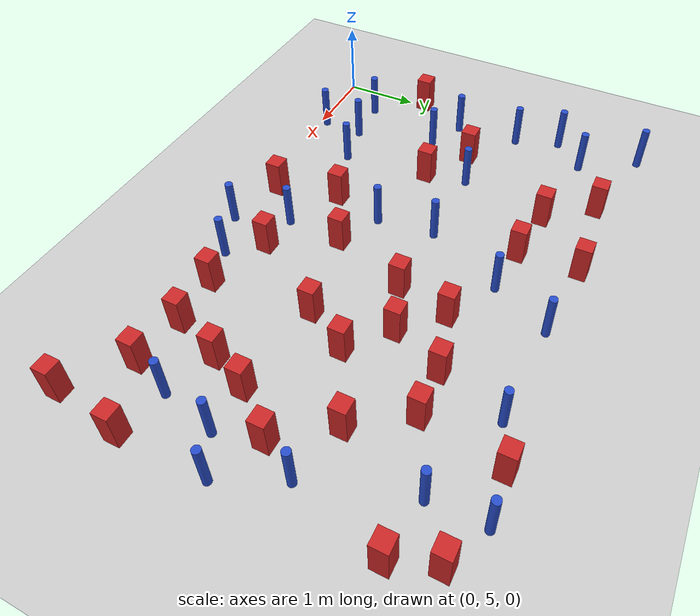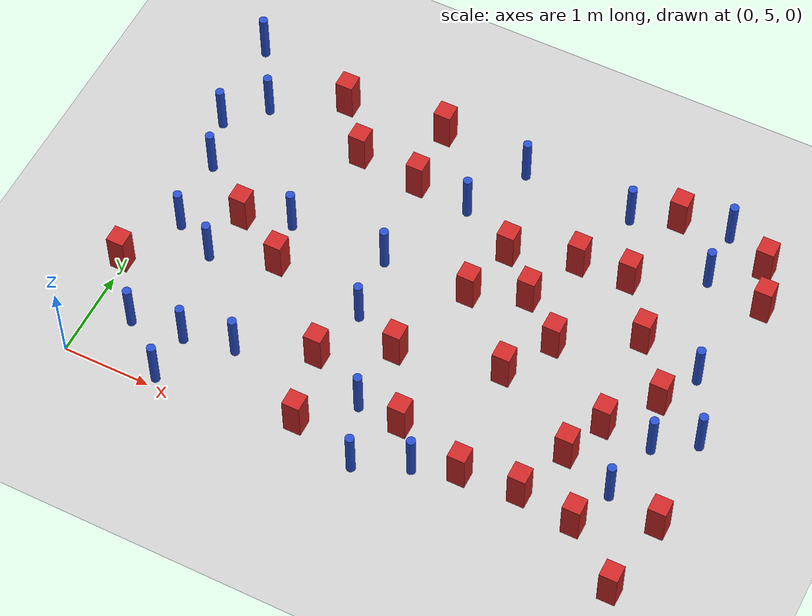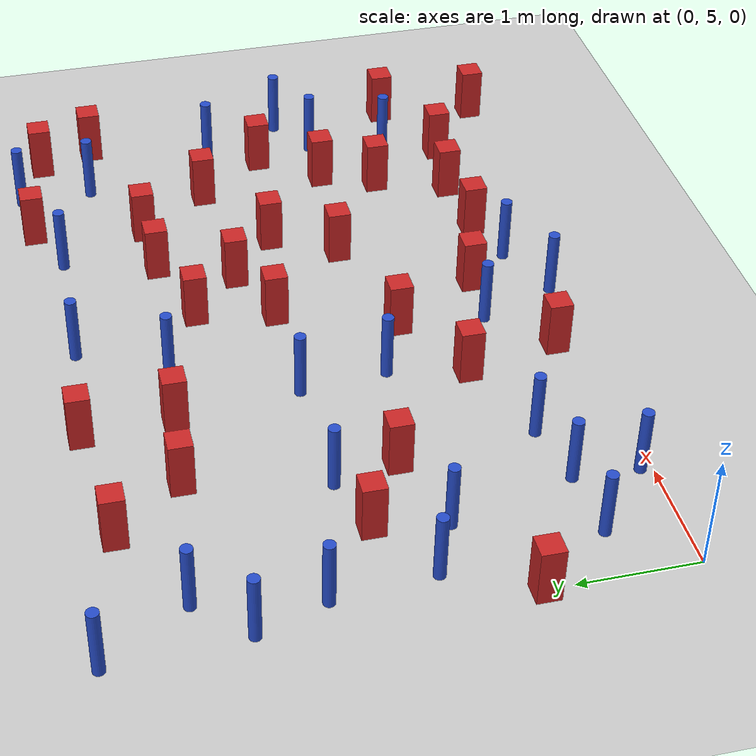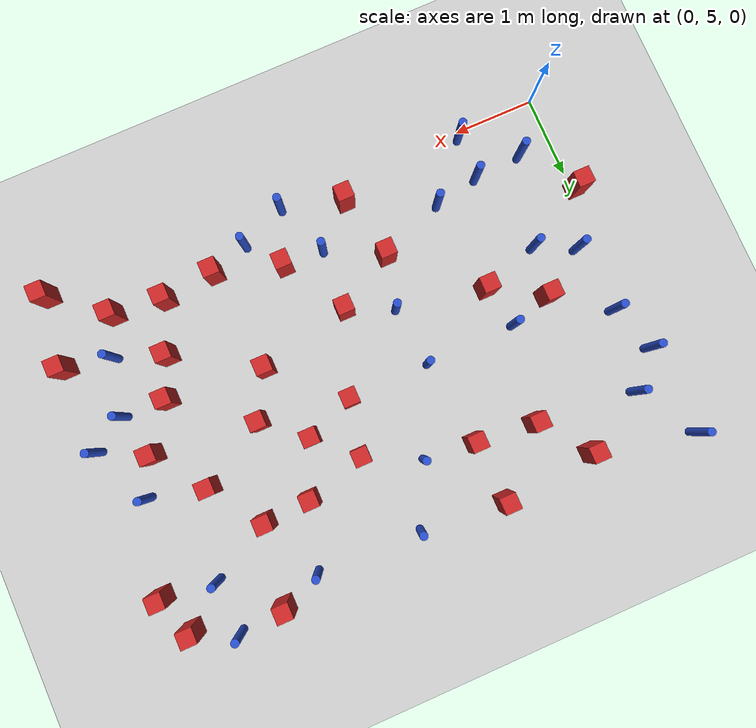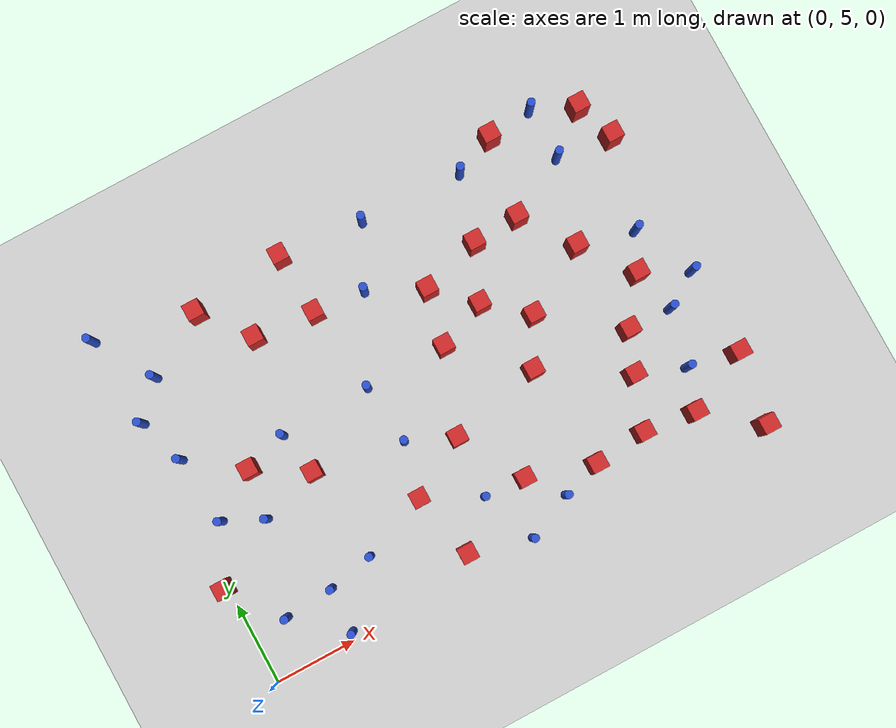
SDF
<sdf version="1.6">
 <world name="default">
  <model name="ground_plane">
   <static>1</static>
   <link name="link">
    <collision name="collision">
     <geometry><plane><normal>0 0 1</normal><size>100 100</size></plane></geometry>
     <surface><friction><ode><mu>100</mu><mu2>50</mu2></ode></friction></surface>
    </collision>
    <visual name="visual">
     <cast_shadows>0</cast_shadows>
     <geometry><plane><normal>0 0 1</normal><size>100 100</size></plane></geometry>
     <material>
      <ambient>1.0 1.0 1.0 1.0</ambient>
      <diffuse>0.8 0.8 0.8 1.0</diffuse>
      <specular>0.01 0.01 0.01 1.000000</specular>
     </material>
    </visual>
   </link>
  </model>
  <model name="square_post_obstacle15">
   <static>true</static>
   <pose>4.13115167397 7.73196984689 1.91545236811e-07 -7.35059704564e-06 1.12565212e-07 2.39332434364e-05</pose>
   <link name="link">
    <pose>0 0 0.25 0 -0 0</pose>
    <inertial>
     <mass>100</mass>
     <inertia>
      <ixx>0.166667</ixx>
      <ixy>0</ixy>
      <ixz>0</ixz>
      <iyy>0.166667</iyy>
      <iyz>0</iyz>
      <izz>0.166667</izz>
     </inertia>
    </inertial>
    <collision name="collision"><geometry><box><size>.2 .2 .5</size></box></geometry></collision>
    <visual name="visual">
     <geometry><box><size>.2 .2 .5</size></box></geometry>
     <material>
      <script><name>Gazebo/Red</name><uri>file://media/materials/scripts/gazebo.material</uri></script>
     </material>
    </visual>
   </link>
  </model>
  <model name="square_post_obstacle16">
   <static>true</static>
   <pose>3.53115451772 7.49610520008 1.91545236811e-07 -7.35059704564e-06 1.12565212e-07 2.39332434364e-05</pose>
   <link name="link">
    <pose>0 0 0.25 0 -0 0</pose>
    <inertial>
     <mass>100</mass>
     <inertia>
      <ixx>0.166667</ixx>
      <ixy>0</ixy>
      <ixz>0</ixz>
      <iyy>0.166667</iyy>
      <iyz>0</iyz>
      <izz>0.166667</izz>
     </inertia>
    </inertial>
    <collision name="collision"><geometry><box><size>.2 .2 .5</size></box></geometry></collision>
    <visual name="visual">
     <geometry><box><size>.2 .2 .5</size></box></geometry>
     <material>
      <script><name>Gazebo/Red</name><uri>file://media/materials/scripts/gazebo.material</uri></script>
     </material>
    </visual>
   </link>
  </model>
  <model name="pole_obstacle14">
   <static>true</static>
   <pose>6.1434675484 7.62217938228 7.38925637345e-09 -8.47170692796e-08 1.24976764786e-08 -1.74513093032e-07</pose>
   <link name="link">
    <pose>0 0 0.3 0 -0 0</pose>
    <inertial>
     <mass>1</mass>
     <inertia><ixx>0.145833</ixx><ixy>0</ixy><ixz>0</ixz><iyy>0.145833</iyy><iyz>0</iyz><izz>0.125</izz></inertia>
    </inertial>
    <collision name="collision">
     <geometry><cylinder><radius>0.05</radius><length>.6</length></cylinder></geometry>
    </collision>
    <visual name="visual">
     <geometry><cylinder><radius>0.05</radius><length>.6</length></cylinder></geometry>
     <material>
      <script><name>Gazebo/Blue</name><uri>file://media/materials/scripts/gazebo.material</uri></script>
     </material>
    </visual>
   </link>
  </model>
  <model name="square_post_obstacle24">
   <static>true</static>
   <pose>4.30257774351 6.76059418714 1.91545236811e-07 -7.35059704564e-06 1.12565212e-07 2.39332434364e-05</pose>
   <link name="link">
    <pose>0 0 0.25 0 -0 0</pose>
    <inertial>
     <mass>100</mass>
     <inertia>
      <ixx>0.166667</ixx>
      <ixy>0</ixy>
      <ixz>0</ixz>
      <iyy>0.166667</iyy>
      <iyz>0</iyz>
      <izz>0.166667</izz>
     </inertia>
    </inertial>
    <collision name="collision"><geometry><box><size>.2 .2 .5</size></box></geometry></collision>
    <visual name="visual">
     <geometry><box><size>.2 .2 .5</size></box></geometry>
     <material>
      <script><name>Gazebo/Red</name><uri>file://media/materials/scripts/gazebo.material</uri></script>
     </material>
    </visual>
   </link>
  </model>
  <model name="pole_obstacle18">
   <static>true</static>
   <pose>3.37846902012 5.0575308071 7.38925637345e-09 -8.47170692798e-08 1.24976765033e-08 -1.74513093019e-07</pose>
   <link name="link">
    <pose>0 0 0.3 0 -0 0</pose>
    <inertial>
     <mass>1</mass>
     <inertia><ixx>0.145833</ixx><ixy>0</ixy><ixz>0</ixz><iyy>0.145833</iyy><iyz>0</iyz><izz>0.125</izz></inertia>
    </inertial>
    <collision name="collision">
     <geometry><cylinder><radius>0.05</radius><length>.6</length></cylinder></geometry>
    </collision>
    <visual name="visual">
     <geometry><cylinder><radius>0.05</radius><length>.6</length></cylinder></geometry>
     <material>
      <script><name>Gazebo/Blue</name><uri>file://media/materials/scripts/gazebo.material</uri></script>
     </material>
    </visual>
   </link>
  </model>
  <model name="pole_obstacle25">
   <static>true</static>
   <pose>4.66660512128 9.19185439013 7.38925637345e-09 -8.471706928e-08 1.24976765081e-08 -1.74513093015e-07</pose>
   <link name="link">
    <pose>0 0 0.3 0 -0 0</pose>
    <inertial>
     <mass>1</mass>
     <inertia><ixx>0.145833</ixx><ixy>0</ixy><ixz>0</ixz><iyy>0.145833</iyy><iyz>0</iyz><izz>0.125</izz></inertia>
    </inertial>
    <collision name="collision">
     <geometry><cylinder><radius>0.05</radius><length>.6</length></cylinder></geometry>
    </collision>
    <visual name="visual">
     <geometry><cylinder><radius>0.05</radius><length>.6</length></cylinder></geometry>
     <material>
      <script><name>Gazebo/Blue</name><uri>file://media/materials/scripts/gazebo.material</uri></script>
     </material>
    </visual>
   </link>
  </model>
  <model name="square_post_obstacle34">
   <static>true</static>
   <pose>5.50390856843 6.64556101438 1.91545236811e-07 -7.35059704564e-06 1.12565212e-07 2.39332434364e-05</pose>
   <link name="link">
    <pose>0 0 0.25 0 -0 0</pose>
    <inertial>
     <mass>100</mass>
     <inertia>
      <ixx>0.166667</ixx>
      <ixy>0</ixy>
      <ixz>0</ixz>
      <iyy>0.166667</iyy>
      <iyz>0</iyz>
      <izz>0.166667</izz>
     </inertia>
    </inertial>
    <collision name="collision"><geometry><box><size>.2 .2 .5</size></box></geometry></collision>
    <visual name="visual">
     <geometry><box><size>.2 .2 .5</size></box></geometry>
     <material>
      <script><name>Gazebo/Red</name><uri>file://media/materials/scripts/gazebo.material</uri></script>
     </material>
    </visual>
   </link>
  </model>
  <model name="pole_obstacle44">
   <static>true</static>
   <pose>2.52265327215 7.49307759897 7.38925637345e-09 -8.47170692798e-08 1.24976765033e-08 -1.74513093019e-07</pose>
   <link name="link">
    <pose>0 0 0.3 0 -0 0</pose>
    <inertial>
     <mass>1</mass>
     <inertia><ixx>0.145833</ixx><ixy>0</ixy><ixz>0</ixz><iyy>0.145833</iyy><iyz>0</iyz><izz>0.125</izz></inertia>
    </inertial>
    <collision name="collision">
     <geometry><cylinder><radius>0.05</radius><length>.6</length></cylinder></geometry>
    </collision>
    <visual name="visual">
     <geometry><cylinder><radius>0.05</radius><length>.6</length></cylinder></geometry>
     <material>
      <script><name>Gazebo/Blue</name><uri>file://media/materials/scripts/gazebo.material</uri></script>
     </material>
    </visual>
   </link>
  </model>
  <model name="square_post_obstacle43">
   <static>true</static>
   <pose>3.16391328015 6.49576306869 1.91545236811e-07 -7.35059704564e-06 1.12565212e-07 2.39332434364e-05</pose>
   <link name="link">
    <pose>0 0 0.25 0 -0 0</pose>
    <inertial>
     <mass>100</mass>
     <inertia>
      <ixx>0.166667</ixx>
      <ixy>0</ixy>
      <ixz>0</ixz>
      <iyy>0.166667</iyy>
      <iyz>0</iyz>
      <izz>0.166667</izz>
     </inertia>
    </inertial>
    <collision name="collision"><geometry><box><size>.2 .2 .5</size></box></geometry></collision>
    <visual name="visual">
     <geometry><box><size>.2 .2 .5</size></box></geometry>
     <material>
      <script><name>Gazebo/Red</name><uri>file://media/materials/scripts/gazebo.material</uri></script>
     </material>
    </visual>
   </link>
  </model>
  <model name="square_post_obstacle46">
   <static>true</static>
   <pose>4.61760121115 7.32004831923 1.91545236811e-07 -7.35059704564e-06 1.12565212e-07 2.39332434364e-05</pose>
   <link name="link">
    <pose>0 0 0.25 0 -0 0</pose>
    <inertial>
     <mass>100</mass>
     <inertia>
      <ixx>0.166667</ixx>
      <ixy>0</ixy>
      <ixz>0</ixz>
      <iyy>0.166667</iyy>
      <iyz>0</iyz>
      <izz>0.166667</izz>
     </inertia>
    </inertial>
    <collision name="collision"><geometry><box><size>.2 .2 .5</size></box></geometry></collision>
    <visual name="visual">
     <geometry><box><size>.2 .2 .5</size></box></geometry>
     <material>
      <script><name>Gazebo/Red</name><uri>file://media/materials/scripts/gazebo.material</uri></script>
     </material>
    </visual>
   </link>
  </model>
  <model name="square_post_obstacle49">
   <static>true</static>
   <pose>1.18825915925 9.20984056343 1.91545236811e-07 -7.35059704564e-06 1.12565212e-07 2.39332434364e-05</pose>
   <link name="link">
    <pose>0 0 0.25 0 -0 0</pose>
    <inertial>
     <mass>100</mass>
     <inertia>
      <ixx>0.166667</ixx>
      <ixy>0</ixy>
      <ixz>0</ixz>
      <iyy>0.166667</iyy>
      <iyz>0</iyz>
      <izz>0.166667</izz>
     </inertia>
    </inertial>
    <collision name="collision"><geometry><box><size>.2 .2 .5</size></box></geometry></collision>
    <visual name="visual">
     <geometry><box><size>.2 .2 .5</size></box></geometry>
     <material>
      <script><name>Gazebo/Red</name><uri>file://media/materials/scripts/gazebo.material</uri></script>
     </material>
    </visual>
   </link>
  </model>
  <model name="pole_obstacle51">
   <static>true</static>
   <pose>1.06396215544 5.65403451183 7.38925637345e-09 -8.47170692799e-08 1.24976765033e-08 -1.74513093018e-07</pose>
   <link name="link">
    <pose>0 0 0.3 0 -0 0</pose>
    <inertial>
     <mass>1</mass>
     <inertia><ixx>0.145833</ixx><ixy>0</ixy><ixz>0</ixz><iyy>0.145833</iyy><iyz>0</iyz><izz>0.125</izz></inertia>
    </inertial>
    <collision name="collision">
     <geometry><cylinder><radius>0.05</radius><length>.6</length></cylinder></geometry>
    </collision>
    <visual name="visual">
     <geometry><cylinder><radius>0.05</radius><length>.6</length></cylinder></geometry>
     <material>
      <script><name>Gazebo/Blue</name><uri>file://media/materials/scripts/gazebo.material</uri></script>
     </material>
    </visual>
   </link>
  </model>
  <model name="pole_obstacle59">
   <static>true</static>
   <pose>1.62644588178 5.76879595982 7.38925637345e-09 -8.47170692799e-08 1.24976765033e-08 -1.74513093018e-07</pose>
   <link name="link">
    <pose>0 0 0.3 0 -0 0</pose>
    <inertial>
     <mass>1</mass>
     <inertia><ixx>0.145833</ixx><ixy>0</ixy><ixz>0</ixz><iyy>0.145833</iyy><iyz>0</iyz><izz>0.125</izz></inertia>
    </inertial>
    <collision name="collision">
     <geometry><cylinder><radius>0.05</radius><length>.6</length></cylinder></geometry>
    </collision>
    <visual name="visual">
     <geometry><cylinder><radius>0.05</radius><length>.6</length></cylinder></geometry>
     <material>
      <script><name>Gazebo/Blue</name><uri>file://media/materials/scripts/gazebo.material</uri></script>
     </material>
    </visual>
   </link>
  </model>
  <model name="square_post_obstacle65">
   <static>true</static>
   <pose>3.67943728218 8.16893818999 1.91545236811e-07 -7.35059704564e-06 1.12565212e-07 2.39332434364e-05</pose>
   <link name="link">
    <pose>0 0 0.25 0 -0 0</pose>
    <inertial>
     <mass>100</mass>
     <inertia>
      <ixx>0.166667</ixx>
      <ixy>0</ixy>
      <ixz>0</ixz>
      <iyy>0.166667</iyy>
      <iyz>0</iyz>
      <izz>0.166667</izz>
     </inertia>
    </inertial>
    <collision name="collision"><geometry><box><size>.2 .2 .5</size></box></geometry></collision>
    <visual name="visual">
     <geometry><box><size>.2 .2 .5</size></box></geometry>
     <material>
      <script><name>Gazebo/Red</name><uri>file://media/materials/scripts/gazebo.material</uri></script>
     </material>
    </visual>
   </link>
  </model>
  <model name="square_post_obstacle71">
   <static>true</static>
   <pose>4.41682827194 8.38614639929 1.91545236811e-07 -7.35059704564e-06 1.12565212e-07 2.39332434364e-05</pose>
   <link name="link">
    <pose>0 0 0.25 0 -0 0</pose>
    <inertial>
     <mass>100</mass>
     <inertia>
      <ixx>0.166667</ixx>
      <ixy>0</ixy>
      <ixz>0</ixz>
      <iyy>0.166667</iyy>
      <iyz>0</iyz>
      <izz>0.166667</izz>
     </inertia>
    </inertial>
    <collision name="collision"><geometry><box><size>.2 .2 .5</size></box></geometry></collision>
    <visual name="visual">
     <geometry><box><size>.2 .2 .5</size></box></geometry>
     <material>
      <script><name>Gazebo/Red</name><uri>file://media/materials/scripts/gazebo.material</uri></script>
     </material>
    </visual>
   </link>
  </model>
  <model name="square_post_obstacle72">
   <static>true</static>
   <pose>0.878882917725 7.31049549033 1.91545236811e-07 -7.35059704564e-06 1.12565212e-07 2.39332434364e-05</pose>
   <link name="link">
    <pose>0 0 0.25 0 -0 0</pose>
    <inertial>
     <mass>100</mass>
     <inertia>
      <ixx>0.166667</ixx>
      <ixy>0</ixy>
      <ixz>0</ixz>
      <iyy>0.166667</iyy>
      <iyz>0</iyz>
      <izz>0.166667</izz>
     </inertia>
    </inertial>
    <collision name="collision"><geometry><box><size>.2 .2 .5</size></box></geometry></collision>
    <visual name="visual">
     <geometry><box><size>.2 .2 .5</size></box></geometry>
     <material>
      <script><name>Gazebo/Red</name><uri>file://media/materials/scripts/gazebo.material</uri></script>
     </material>
    </visual>
   </link>
  </model>
  <model name="square_post_obstacle75">
   <static>true</static>
   <pose>6.42321314776 8.7279670662 1.91545236811e-07 -7.35059704564e-06 1.12565212e-07 2.39332434364e-05</pose>
   <link name="link">
    <pose>0 0 0.25 0 -0 0</pose>
    <inertial>
     <mass>100</mass>
     <inertia>
      <ixx>0.166667</ixx>
      <ixy>0</ixy>
      <ixz>0</ixz>
      <iyy>0.166667</iyy>
      <iyz>0</iyz>
      <izz>0.166667</izz>
     </inertia>
    </inertial>
    <collision name="collision"><geometry><box><size>.2 .2 .5</size></box></geometry></collision>
    <visual name="visual">
     <geometry><box><size>.2 .2 .5</size></box></geometry>
     <material>
      <script><name>Gazebo/Red</name><uri>file://media/materials/scripts/gazebo.material</uri></script>
     </material>
    </visual>
   </link>
  </model>
  <model name="pole_obstacle78">
   <static>true</static>
   <pose>3.38986939799 9.2376695006 7.38925637345e-09 -8.47170692793e-08 1.24976764408e-08 -1.74513093041e-07</pose>
   <link name="link">
    <pose>0 0 0.3 0 -0 0</pose>
    <inertial>
     <mass>1</mass>
     <inertia><ixx>0.145833</ixx><ixy>0</ixy><ixz>0</ixz><iyy>0.145833</iyy><iyz>0</iyz><izz>0.125</izz></inertia>
    </inertial>
    <collision name="collision">
     <geometry><cylinder><radius>0.05</radius><length>.6</length></cylinder></geometry>
    </collision>
    <visual name="visual">
     <geometry><cylinder><radius>0.05</radius><length>.6</length></cylinder></geometry>
     <material>
      <script><name>Gazebo/Blue</name><uri>file://media/materials/scripts/gazebo.material</uri></script>
     </material>
    </visual>
   </link>
  </model>
  <model name="pole_obstacle85">
   <static>true</static>
   <pose>0.311380393912 6.93751961711 7.38925637345e-09 -8.471706928e-08 1.24976765079e-08 -1.74513093015e-07</pose>
   <link name="link">
    <pose>0 0 0.3 0 -0 0</pose>
    <inertial>
     <mass>1</mass>
     <inertia><ixx>0.145833</ixx><ixy>0</ixy><ixz>0</ixz><iyy>0.145833</iyy><iyz>0</iyz><izz>0.125</izz></inertia>
    </inertial>
    <collision name="collision">
     <geometry><cylinder><radius>0.05</radius><length>.6</length></cylinder></geometry>
    </collision>
    <visual name="visual">
     <geometry><cylinder><radius>0.05</radius><length>.6</length></cylinder></geometry>
     <material>
      <script><name>Gazebo/Blue</name><uri>file://media/materials/scripts/gazebo.material</uri></script>
     </material>
    </visual>
   </link>
  </model>
  <model name="square_post_obstacle80">
   <static>true</static>
   <pose>2.34986538842 9.32271484959 1.91545236811e-07 -7.35059704564e-06 1.12565212e-07 2.39332434364e-05</pose>
   <link name="link">
    <pose>0 0 0.25 0 -0 0</pose>
    <inertial>
     <mass>100</mass>
     <inertia>
      <ixx>0.166667</ixx>
      <ixy>0</ixy>
      <ixz>0</ixz>
      <iyy>0.166667</iyy>
      <iyz>0</iyz>
      <izz>0.166667</izz>
     </inertia>
    </inertial>
    <collision name="collision"><geometry><box><size>.2 .2 .5</size></box></geometry></collision>
    <visual name="visual">
     <geometry><box><size>.2 .2 .5</size></box></geometry>
     <material>
      <script><name>Gazebo/Red</name><uri>file://media/materials/scripts/gazebo.material</uri></script>
     </material>
    </visual>
   </link>
  </model>
  <model name="pole_obstacle91">
   <static>true</static>
   <pose>3.11625142003 5.73786752016 7.38925637345e-09 -8.47170692798e-08 1.24976765033e-08 -1.74513093019e-07</pose>
   <link name="link">
    <pose>0 0 0.3 0 -0 0</pose>
    <inertial>
     <mass>1</mass>
     <inertia><ixx>0.145833</ixx><ixy>0</ixy><ixz>0</ixz><iyy>0.145833</iyy><iyz>0</iyz><izz>0.125</izz></inertia>
    </inertial>
    <collision name="collision">
     <geometry><cylinder><radius>0.05</radius><length>.6</length></cylinder></geometry>
    </collision>
    <visual name="visual">
     <geometry><cylinder><radius>0.05</radius><length>.6</length></cylinder></geometry>
     <material>
      <script><name>Gazebo/Blue</name><uri>file://media/materials/scripts/gazebo.material</uri></script>
     </material>
    </visual>
   </link>
  </model>
  <model name="square_post_obstacle87">
   <static>true</static>
   <pose>5.44160291831 7.79048847053 1.91545236811e-07 -7.35059704564e-06 1.12565212e-07 2.39332434364e-05</pose>
   <link name="link">
    <pose>0 0 0.25 0 -0 0</pose>
    <inertial>
     <mass>100</mass>
     <inertia>
      <ixx>0.166667</ixx>
      <ixy>0</ixy>
      <ixz>0</ixz>
      <iyy>0.166667</iyy>
      <iyz>0</iyz>
      <izz>0.166667</izz>
     </inertia>
    </inertial>
    <collision name="collision"><geometry><box><size>.2 .2 .5</size></box></geometry></collision>
    <visual name="visual">
     <geometry><box><size>.2 .2 .5</size></box></geometry>
     <material>
      <script><name>Gazebo/Red</name><uri>file://media/materials/scripts/gazebo.material</uri></script>
     </material>
    </visual>
   </link>
  </model>
  <model name="pole_obstacle100">
   <static>true</static>
   <pose>0.457272648865 5.60582808051 7.38925637345e-09 -8.471706928e-08 1.24976765095e-08 -1.74513093014e-07</pose>
   <link name="link">
    <pose>0 0 0.3 0 -0 0</pose>
    <inertial>
     <mass>1</mass>
     <inertia><ixx>0.145833</ixx><ixy>0</ixy><ixz>0</ixz><iyy>0.145833</iyy><iyz>0</iyz><izz>0.125</izz></inertia>
    </inertial>
    <collision name="collision">
     <geometry><cylinder><radius>0.05</radius><length>.6</length></cylinder></geometry>
    </collision>
    <visual name="visual">
     <geometry><cylinder><radius>0.05</radius><length>.6</length></cylinder></geometry>
     <material>
      <script><name>Gazebo/Blue</name><uri>file://media/materials/scripts/gazebo.material</uri></script>
     </material>
    </visual>
   </link>
  </model>
  <model name="square_post_obstacle89">
   <static>true</static>
   <pose>5.90627872161 7.17714589237 1.91545236811e-07 -7.35059704564e-06 1.12565212e-07 2.39332434364e-05</pose>
   <link name="link">
    <pose>0 0 0.25 0 -0 0</pose>
    <inertial>
     <mass>100</mass>
     <inertia>
      <ixx>0.166667</ixx>
      <ixy>0</ixy>
      <ixz>0</ixz>
      <iyy>0.166667</iyy>
      <iyz>0</iyz>
      <izz>0.166667</izz>
     </inertia>
    </inertial>
    <collision name="collision"><geometry><box><size>.2 .2 .5</size></box></geometry></collision>
    <visual name="visual">
     <geometry><box><size>.2 .2 .5</size></box></geometry>
     <material>
      <script><name>Gazebo/Red</name><uri>file://media/materials/scripts/gazebo.material</uri></script>
     </material>
    </visual>
   </link>
  </model>
  <model name="pole_obstacle106">
   <static>true</static>
   <pose>1.03991477773 5.10233770512 7.38925637345e-09 -8.47170692799e-08 1.24976765021e-08 -1.74513093019e-07</pose>
   <link name="link">
    <pose>0 0 0.3 0 -0 0</pose>
    <inertial>
     <mass>1</mass>
     <inertia><ixx>0.145833</ixx><ixy>0</ixy><ixz>0</ixz><iyy>0.145833</iyy><iyz>0</iyz><izz>0.125</izz></inertia>
    </inertial>
    <collision name="collision">
     <geometry><cylinder><radius>0.05</radius><length>.6</length></cylinder></geometry>
    </collision>
    <visual name="visual">
     <geometry><cylinder><radius>0.05</radius><length>.6</length></cylinder></geometry>
     <material>
      <script><name>Gazebo/Blue</name><uri>file://media/materials/scripts/gazebo.material</uri></script>
     </material>
    </visual>
   </link>
  </model>
  <model name="pole_obstacle110">
   <static>true</static>
   <pose>0.0370421425793 8.36806541247 7.38925637345e-09 -8.47170692796e-08 1.24976764747e-08 -1.74513093035e-07</pose>
   <link name="link">
    <pose>0 0 0.3 0 -0 0</pose>
    <inertial>
     <mass>1</mass>
     <inertia><ixx>0.145833</ixx><ixy>0</ixy><ixz>0</ixz><iyy>0.145833</iyy><iyz>0</iyz><izz>0.125</izz></inertia>
    </inertial>
    <collision name="collision">
     <geometry><cylinder><radius>0.05</radius><length>.6</length></cylinder></geometry>
    </collision>
    <visual name="visual">
     <geometry><cylinder><radius>0.05</radius><length>.6</length></cylinder></geometry>
     <material>
      <script><name>Gazebo/Blue</name><uri>file://media/materials/scripts/gazebo.material</uri></script>
     </material>
    </visual>
   </link>
  </model>
  <model name="square_post_obstacle101">
   <static>true</static>
   <pose>3.61879261119 5.71347147846 1.91545236811e-07 -7.35059704564e-06 1.12565212e-07 2.39332434364e-05</pose>
   <link name="link">
    <pose>0 0 0.25 0 -0 0</pose>
    <inertial>
     <mass>100</mass>
     <inertia>
      <ixx>0.166667</ixx>
      <ixy>0</ixy>
      <ixz>0</ixz>
      <iyy>0.166667</iyy>
      <iyz>0</iyz>
      <izz>0.166667</izz>
     </inertia>
    </inertial>
    <collision name="collision"><geometry><box><size>.2 .2 .5</size></box></geometry></collision>
    <visual name="visual">
     <geometry><box><size>.2 .2 .5</size></box></geometry>
     <material>
      <script><name>Gazebo/Red</name><uri>file://media/materials/scripts/gazebo.material</uri></script>
     </material>
    </visual>
   </link>
  </model>
  <model name="square_post_obstacle105">
   <static>true</static>
   <pose>5.30530673674 6.15811594493 1.91545236811e-07 -7.35059704564e-06 1.12565212e-07 2.39332434364e-05</pose>
   <link name="link">
    <pose>0 0 0.25 0 -0 0</pose>
    <inertial>
     <mass>100</mass>
     <inertia>
      <ixx>0.166667</ixx>
      <ixy>0</ixy>
      <ixz>0</ixz>
      <iyy>0.166667</iyy>
      <iyz>0</iyz>
      <izz>0.166667</izz>
     </inertia>
    </inertial>
    <collision name="collision"><geometry><box><size>.2 .2 .5</size></box></geometry></collision>
    <visual name="visual">
     <geometry><box><size>.2 .2 .5</size></box></geometry>
     <material>
      <script><name>Gazebo/Red</name><uri>file://media/materials/scripts/gazebo.material</uri></script>
     </material>
    </visual>
   </link>
  </model>
  <model name="square_post_obstacle106">
   <static>true</static>
   <pose>4.42403085099 5.46627018924 1.91545236811e-07 -7.35059704564e-06 1.12565212e-07 2.39332434364e-05</pose>
   <link name="link">
    <pose>0 0 0.25 0 -0 0</pose>
    <inertial>
     <mass>100</mass>
     <inertia>
      <ixx>0.166667</ixx>
      <ixy>0</ixy>
      <ixz>0</ixz>
      <iyy>0.166667</iyy>
      <iyz>0</iyz>
      <izz>0.166667</izz>
     </inertia>
    </inertial>
    <collision name="collision"><geometry><box><size>.2 .2 .5</size></box></geometry></collision>
    <visual name="visual">
     <geometry><box><size>.2 .2 .5</size></box></geometry>
     <material>
      <script><name>Gazebo/Red</name><uri>file://media/materials/scripts/gazebo.material</uri></script>
     </material>
    </visual>
   </link>
  </model>
  <model name="square_post_obstacle107">
   <static>true</static>
   <pose>-0.0185475085129 6.23746322209 1.91545236811e-07 -7.35059704564e-06 1.12565212e-07 2.39332434364e-05</pose>
   <link name="link">
    <pose>0 0 0.25 0 -0 0</pose>
    <inertial>
     <mass>100</mass>
     <inertia>
      <ixx>0.166667</ixx>
      <ixy>0</ixy>
      <ixz>0</ixz>
      <iyy>0.166667</iyy>
      <iyz>0</iyz>
      <izz>0.166667</izz>
     </inertia>
    </inertial>
    <collision name="collision"><geometry><box><size>.2 .2 .5</size></box></geometry></collision>
    <visual name="visual">
     <geometry><box><size>.2 .2 .5</size></box></geometry>
     <material>
      <script><name>Gazebo/Red</name><uri>file://media/materials/scripts/gazebo.material</uri></script>
     </material>
    </visual>
   </link>
  </model>
  <model name="square_post_obstacle109">
   <static>true</static>
   <pose>4.99791456149 8.41959353977 1.91545236811e-07 -7.35059704564e-06 1.12565212e-07 2.39332434364e-05</pose>
   <link name="link">
    <pose>0 0 0.25 0 -0 0</pose>
    <inertial>
     <mass>100</mass>
     <inertia>
      <ixx>0.166667</ixx>
      <ixy>0</ixy>
      <ixz>0</ixz>
      <iyy>0.166667</iyy>
      <iyz>0</iyz>
      <izz>0.166667</izz>
     </inertia>
    </inertial>
    <collision name="collision"><geometry><box><size>.2 .2 .5</size></box></geometry></collision>
    <visual name="visual">
     <geometry><box><size>.2 .2 .5</size></box></geometry>
     <material>
      <script><name>Gazebo/Red</name><uri>file://media/materials/scripts/gazebo.material</uri></script>
     </material>
    </visual>
   </link>
  </model>
  <model name="pole_obstacle127">
   <static>true</static>
   <pose>0.418118593672 8.77122060571 7.38925637345e-09 -8.47170692796e-08 1.24976764724e-08 -1.74513093036e-07</pose>
   <link name="link">
    <pose>0 0 0.3 0 -0 0</pose>
    <inertial>
     <mass>1</mass>
     <inertia><ixx>0.145833</ixx><ixy>0</ixy><ixz>0</ixz><iyy>0.145833</iyy><iyz>0</iyz><izz>0.125</izz></inertia>
    </inertial>
    <collision name="collision">
     <geometry><cylinder><radius>0.05</radius><length>.6</length></cylinder></geometry>
    </collision>
    <visual name="visual">
     <geometry><cylinder><radius>0.05</radius><length>.6</length></cylinder></geometry>
     <material>
      <script><name>Gazebo/Blue</name><uri>file://media/materials/scripts/gazebo.material</uri></script>
     </material>
    </visual>
   </link>
  </model>
  <model name="pole_obstacle130">
   <static>true</static>
   <pose>5.89440472343 5.93482503197 7.38925637345e-09 -8.47170692796e-08 1.24976764786e-08 -1.74513093032e-07</pose>
   <link name="link">
    <pose>0 0 0.3 0 -0 0</pose>
    <inertial>
     <mass>1</mass>
     <inertia><ixx>0.145833</ixx><ixy>0</ixy><ixz>0</ixz><iyy>0.145833</iyy><iyz>0</iyz><izz>0.125</izz></inertia>
    </inertial>
    <collision name="collision">
     <geometry><cylinder><radius>0.05</radius><length>.6</length></cylinder></geometry>
    </collision>
    <visual name="visual">
     <geometry><cylinder><radius>0.05</radius><length>.6</length></cylinder></geometry>
     <material>
      <script><name>Gazebo/Blue</name><uri>file://media/materials/scripts/gazebo.material</uri></script>
     </material>
    </visual>
   </link>
  </model>
  <model name="pole_obstacle132">
   <static>true</static>
   <pose>-0.0240946729263 9.48611196061 7.38925637345e-09 -8.47170692796e-08 1.24976764793e-08 -1.74513093032e-07</pose>
   <link name="link">
    <pose>0 0 0.3 0 -0 0</pose>
    <inertial>
     <mass>1</mass>
     <inertia><ixx>0.145833</ixx><ixy>0</ixy><ixz>0</ixz><iyy>0.145833</iyy><iyz>0</iyz><izz>0.125</izz></inertia>
    </inertial>
    <collision name="collision">
     <geometry><cylinder><radius>0.05</radius><length>.6</length></cylinder></geometry>
    </collision>
    <visual name="visual">
     <geometry><cylinder><radius>0.05</radius><length>.6</length></cylinder></geometry>
     <material>
      <script><name>Gazebo/Blue</name><uri>file://media/materials/scripts/gazebo.material</uri></script>
     </material>
    </visual>
   </link>
  </model>
  <model name="pole_obstacle133">
   <static>true</static>
   <pose>1.40048788656 7.47478199145 7.38925637345e-09 -8.47170692799e-08 1.24976765033e-08 -1.74513093018e-07</pose>
   <link name="link">
    <pose>0 0 0.3 0 -0 0</pose>
    <inertial>
     <mass>1</mass>
     <inertia><ixx>0.145833</ixx><ixy>0</ixy><ixz>0</ixz><iyy>0.145833</iyy><iyz>0</iyz><izz>0.125</izz></inertia>
    </inertial>
    <collision name="collision">
     <geometry><cylinder><radius>0.05</radius><length>.6</length></cylinder></geometry>
    </collision>
    <visual name="visual">
     <geometry><cylinder><radius>0.05</radius><length>.6</length></cylinder></geometry>
     <material>
      <script><name>Gazebo/Blue</name><uri>file://media/materials/scripts/gazebo.material</uri></script>
     </material>
    </visual>
   </link>
  </model>
  <model name="pole_obstacle134">
   <static>true</static>
   <pose>6.48434207252 6.89372245705 7.38925637345e-09 -8.47170692796e-08 1.24976764786e-08 -1.74513093032e-07</pose>
   <link name="link">
    <pose>0 0 0.3 0 -0 0</pose>
    <inertial>
     <mass>1</mass>
     <inertia><ixx>0.145833</ixx><ixy>0</ixy><ixz>0</ixz><iyy>0.145833</iyy><iyz>0</iyz><izz>0.125</izz></inertia>
    </inertial>
    <collision name="collision">
     <geometry><cylinder><radius>0.05</radius><length>.6</length></cylinder></geometry>
    </collision>
    <visual name="visual">
     <geometry><cylinder><radius>0.05</radius><length>.6</length></cylinder></geometry>
     <material>
      <script><name>Gazebo/Blue</name><uri>file://media/materials/scripts/gazebo.material</uri></script>
     </material>
    </visual>
   </link>
  </model>
  <model name="square_post_obstacle121">
   <static>true</static>
   <pose>1.51140494691 6.93822348626 1.91545236811e-07 -7.35059704564e-06 1.12565212e-07 2.39332434364e-05</pose>
   <link name="link">
    <pose>0 0 0.25 0 -0 0</pose>
    <inertial>
     <mass>100</mass>
     <inertia>
      <ixx>0.166667</ixx>
      <ixy>0</ixy>
      <ixz>0</ixz>
      <iyy>0.166667</iyy>
      <iyz>0</iyz>
      <izz>0.166667</izz>
     </inertia>
    </inertial>
    <collision name="collision"><geometry><box><size>.2 .2 .5</size></box></geometry></collision>
    <visual name="visual">
     <geometry><box><size>.2 .2 .5</size></box></geometry>
     <material>
      <script><name>Gazebo/Red</name><uri>file://media/materials/scripts/gazebo.material</uri></script>
     </material>
    </visual>
   </link>
  </model>
  <model name="square_post_obstacle122">
   <static>true</static>
   <pose>5.16629236256 9.39799926278 1.91545236811e-07 -7.35059704564e-06 1.12565212e-07 2.39332434364e-05</pose>
   <link name="link">
    <pose>0 0 0.25 0 -0 0</pose>
    <inertial>
     <mass>100</mass>
     <inertia>
      <ixx>0.166667</ixx>
      <ixy>0</ixy>
      <ixz>0</ixz>
      <iyy>0.166667</iyy>
      <iyz>0</iyz>
      <izz>0.166667</izz>
     </inertia>
    </inertial>
    <collision name="collision"><geometry><box><size>.2 .2 .5</size></box></geometry></collision>
    <visual name="visual">
     <geometry><box><size>.2 .2 .5</size></box></geometry>
     <material>
      <script><name>Gazebo/Red</name><uri>file://media/materials/scripts/gazebo.material</uri></script>
     </material>
    </visual>
   </link>
  </model>
  <model name="square_post_obstacle131">
   <static>true</static>
   <pose>1.64954025019 8.6275212323 1.91545236811e-07 -7.35059704564e-06 1.12565212e-07 2.39332434364e-05</pose>
   <link name="link">
    <pose>0 0 0.25 0 -0 0</pose>
    <inertial>
     <mass>100</mass>
     <inertia>
      <ixx>0.166667</ixx>
      <ixy>0</ixy>
      <ixz>0</ixz>
      <iyy>0.166667</iyy>
      <iyz>0</iyz>
      <izz>0.166667</izz>
     </inertia>
    </inertial>
    <collision name="collision"><geometry><box><size>.2 .2 .5</size></box></geometry></collision>
    <visual name="visual">
     <geometry><box><size>.2 .2 .5</size></box></geometry>
     <material>
      <script><name>Gazebo/Red</name><uri>file://media/materials/scripts/gazebo.material</uri></script>
     </material>
    </visual>
   </link>
  </model>
  <model name="pole_obstacle146">
   <static>true</static>
   <pose>6.05260967851 6.62876236033 7.38925637345e-09 -8.47170692796e-08 1.24976764786e-08 -1.74513093032e-07</pose>
   <link name="link">
    <pose>0 0 0.3 0 -0 0</pose>
    <inertial>
     <mass>1</mass>
     <inertia><ixx>0.145833</ixx><ixy>0</ixy><ixz>0</ixz><iyy>0.145833</iyy><iyz>0</iyz><izz>0.125</izz></inertia>
    </inertial>
    <collision name="collision">
     <geometry><cylinder><radius>0.05</radius><length>.6</length></cylinder></geometry>
    </collision>
    <visual name="visual">
     <geometry><cylinder><radius>0.05</radius><length>.6</length></cylinder></geometry>
     <material>
      <script><name>Gazebo/Blue</name><uri>file://media/materials/scripts/gazebo.material</uri></script>
     </material>
    </visual>
   </link>
  </model>
  <model name="square_post_obstacle145">
   <static>true</static>
   <pose>5.07300127655 5.52429142445 1.91545236811e-07 -7.35059704564e-06 1.12565212e-07 2.39332434364e-05</pose>
   <link name="link">
    <pose>0 0 0.25 0 -0 0</pose>
    <inertial>
     <mass>100</mass>
     <inertia>
      <ixx>0.166667</ixx>
      <ixy>0</ixy>
      <ixz>0</ixz>
      <iyy>0.166667</iyy>
      <iyz>0</iyz>
      <izz>0.166667</izz>
     </inertia>
    </inertial>
    <collision name="collision"><geometry><box><size>.2 .2 .5</size></box></geometry></collision>
    <visual name="visual">
     <geometry><box><size>.2 .2 .5</size></box></geometry>
     <material>
      <script><name>Gazebo/Red</name><uri>file://media/materials/scripts/gazebo.material</uri></script>
     </material>
    </visual>
   </link>
  </model>
  <model name="square_post_obstacle146">
   <static>true</static>
   <pose>5.71425857112 5.44512176515 1.91545236811e-07 -7.35059704564e-06 1.12565212e-07 2.39332434364e-05</pose>
   <link name="link">
    <pose>0 0 0.25 0 -0 0</pose>
    <inertial>
     <mass>100</mass>
     <inertia>
      <ixx>0.166667</ixx>
      <ixy>0</ixy>
      <ixz>0</ixz>
      <iyy>0.166667</iyy>
      <iyz>0</iyz>
      <izz>0.166667</izz>
     </inertia>
    </inertial>
    <collision name="collision"><geometry><box><size>.2 .2 .5</size></box></geometry></collision>
    <visual name="visual">
     <geometry><box><size>.2 .2 .5</size></box></geometry>
     <material>
      <script><name>Gazebo/Red</name><uri>file://media/materials/scripts/gazebo.material</uri></script>
     </material>
    </visual>
   </link>
  </model>
  <model name="pole_obstacle157">
   <static>true</static>
   <pose>5.73902613149 9.45881318923 7.38925637345e-09 -8.471706928e-08 1.24976765081e-08 -1.74513093015e-07</pose>
   <link name="link">
    <pose>0 0 0.3 0 -0 0</pose>
    <inertial>
     <mass>1</mass>
     <inertia><ixx>0.145833</ixx><ixy>0</ixy><ixz>0</ixz><iyy>0.145833</iyy><iyz>0</iyz><izz>0.125</izz></inertia>
    </inertial>
    <collision name="collision">
     <geometry><cylinder><radius>0.05</radius><length>.6</length></cylinder></geometry>
    </collision>
    <visual name="visual">
     <geometry><cylinder><radius>0.05</radius><length>.6</length></cylinder></geometry>
     <material>
      <script><name>Gazebo/Blue</name><uri>file://media/materials/scripts/gazebo.material</uri></script>
     </material>
    </visual>
   </link>
  </model>
  <model name="pole_obstacle167">
   <static>true</static>
   <pose>3.94834996527 5.30827483927 7.38925637345e-09 -8.47170692798e-08 1.24976765033e-08 -1.74513093019e-07</pose>
   <link name="link">
    <pose>0 0 0.3 0 -0 0</pose>
    <inertial>
     <mass>1</mass>
     <inertia><ixx>0.145833</ixx><ixy>0</ixy><ixz>0</ixz><iyy>0.145833</iyy><iyz>0</iyz><izz>0.125</izz></inertia>
    </inertial>
    <collision name="collision">
     <geometry><cylinder><radius>0.05</radius><length>.6</length></cylinder></geometry>
    </collision>
    <visual name="visual">
     <geometry><cylinder><radius>0.05</radius><length>.6</length></cylinder></geometry>
     <material>
      <script><name>Gazebo/Blue</name><uri>file://media/materials/scripts/gazebo.material</uri></script>
     </material>
    </visual>
   </link>
  </model>
  <model name="square_post_obstacle160">
   <static>true</static>
   <pose>6.35922233023 4.92252593303 1.91545236811e-07 -7.35059704564e-06 1.12565212e-07 2.39332434364e-05</pose>
   <link name="link">
    <pose>0 0 0.25 0 -0 0</pose>
    <inertial>
     <mass>100</mass>
     <inertia>
      <ixx>0.166667</ixx>
      <ixy>0</ixy>
      <ixz>0</ixz>
      <iyy>0.166667</iyy>
      <iyz>0</iyz>
      <izz>0.166667</izz>
     </inertia>
    </inertial>
    <collision name="collision"><geometry><box><size>.2 .2 .5</size></box></geometry></collision>
    <visual name="visual">
     <geometry><box><size>.2 .2 .5</size></box></geometry>
     <material>
      <script><name>Gazebo/Red</name><uri>file://media/materials/scripts/gazebo.material</uri></script>
     </material>
    </visual>
   </link>
  </model>
  <model name="pole_obstacle171">
   <static>true</static>
   <pose>2.60195222466 6.74298891561 7.38925637345e-09 -8.47170692798e-08 1.24976765033e-08 -1.74513093019e-07</pose>
   <link name="link">
    <pose>0 0 0.3 0 -0 0</pose>
    <inertial>
     <mass>1</mass>
     <inertia><ixx>0.145833</ixx><ixy>0</ixy><ixz>0</ixz><iyy>0.145833</iyy><iyz>0</iyz><izz>0.125</izz></inertia>
    </inertial>
    <collision name="collision">
     <geometry><cylinder><radius>0.05</radius><length>.6</length></cylinder></geometry>
    </collision>
    <visual name="visual">
     <geometry><cylinder><radius>0.05</radius><length>.6</length></cylinder></geometry>
     <material>
      <script><name>Gazebo/Blue</name><uri>file://media/materials/scripts/gazebo.material</uri></script>
     </material>
    </visual>
   </link>
  </model>
  <model name="pole_obstacle176">
   <static>true</static>
   <pose>3.02358828583 8.50112707488 7.38925637345e-09 -8.47170692793e-08 1.24976764408e-08 -1.74513093041e-07</pose>
   <link name="link">
    <pose>0 0 0.3 0 -0 0</pose>
    <inertial>
     <mass>1</mass>
     <inertia><ixx>0.145833</ixx><ixy>0</ixy><ixz>0</ixz><iyy>0.145833</iyy><iyz>0</iyz><izz>0.125</izz></inertia>
    </inertial>
    <collision name="collision">
     <geometry><cylinder><radius>0.05</radius><length>.6</length></cylinder></geometry>
    </collision>
    <visual name="visual">
     <geometry><cylinder><radius>0.05</radius><length>.6</length></cylinder></geometry>
     <material>
      <script><name>Gazebo/Blue</name><uri>file://media/materials/scripts/gazebo.material</uri></script>
     </material>
    </visual>
   </link>
  </model>
  <model name="square_post_obstacle167">
   <static>true</static>
   <pose>2.63122126376 5.2668901729 1.91545236811e-07 -7.35059704564e-06 1.12565212e-07 2.39332434364e-05</pose>
   <link name="link">
    <pose>0 0 0.25 0 -0 0</pose>
    <inertial>
     <mass>100</mass>
     <inertia>
      <ixx>0.166667</ixx>
      <ixy>0</ixy>
      <ixz>0</ixz>
      <iyy>0.166667</iyy>
      <iyz>0</iyz>
      <izz>0.166667</izz>
     </inertia>
    </inertial>
    <collision name="collision"><geometry><box><size>.2 .2 .5</size></box></geometry></collision>
    <visual name="visual">
     <geometry><box><size>.2 .2 .5</size></box></geometry>
     <material>
      <script><name>Gazebo/Red</name><uri>file://media/materials/scripts/gazebo.material</uri></script>
     </material>
    </visual>
   </link>
  </model>
  <model name="square_post_obstacle169">
   <static>true</static>
   <pose>2.39415461883 8.55376633669 1.91545236811e-07 -7.35059704564e-06 1.12565212e-07 2.39332434364e-05</pose>
   <link name="link">
    <pose>0 0 0.25 0 -0 0</pose>
    <inertial>
     <mass>100</mass>
     <inertia>
      <ixx>0.166667</ixx>
      <ixy>0</ixy>
      <ixz>0</ixz>
      <iyy>0.166667</iyy>
      <iyz>0</iyz>
      <izz>0.166667</izz>
     </inertia>
    </inertial>
    <collision name="collision"><geometry><box><size>.2 .2 .5</size></box></geometry></collision>
    <visual name="visual">
     <geometry><box><size>.2 .2 .5</size></box></geometry>
     <material>
      <script><name>Gazebo/Red</name><uri>file://media/materials/scripts/gazebo.material</uri></script>
     </material>
    </visual>
   </link>
  </model>
  <model name="square_post_obstacle173">
   <static>true</static>
   <pose>6.48766273969 5.81440890574 1.91545236811e-07 -7.35059704564e-06 1.12565212e-07 2.39332434364e-05</pose>
   <link name="link">
    <pose>0 0 0.25 0 -0 0</pose>
    <inertial>
     <mass>100</mass>
     <inertia>
      <ixx>0.166667</ixx>
      <ixy>0</ixy>
      <ixz>0</ixz>
      <iyy>0.166667</iyy>
      <iyz>0</iyz>
      <izz>0.166667</izz>
     </inertia>
    </inertial>
    <collision name="collision"><geometry><box><size>.2 .2 .5</size></box></geometry></collision>
    <visual name="visual">
     <geometry><box><size>.2 .2 .5</size></box></geometry>
     <material>
      <script><name>Gazebo/Red</name><uri>file://media/materials/scripts/gazebo.material</uri></script>
     </material>
    </visual>
   </link>
  </model>
  <model name="square_post_obstacle191">
   <static>true</static>
   <pose>2.44476348317 6.08533487572 1.91545236811e-07 -7.35059704564e-06 1.12565212e-07 2.39332434364e-05</pose>
   <link name="link">
    <pose>0 0 0.25 0 -0 0</pose>
    <inertial>
     <mass>100</mass>
     <inertia>
      <ixx>0.166667</ixx>
      <ixy>0</ixy>
      <ixz>0</ixz>
      <iyy>0.166667</iyy>
      <iyz>0</iyz>
      <izz>0.166667</izz>
     </inertia>
    </inertial>
    <collision name="collision"><geometry><box><size>.2 .2 .5</size></box></geometry></collision>
    <visual name="visual">
     <geometry><box><size>.2 .2 .5</size></box></geometry>
     <material>
      <script><name>Gazebo/Red</name><uri>file://media/materials/scripts/gazebo.material</uri></script>
     </material>
    </visual>
   </link>
  </model>
  <model name="pole_obstacle191">
   <static>true</static>
   <pose>0.233259772646 7.78655455744 7.38925637345e-09 -8.471706928e-08 1.24976765124e-08 -1.74513093014e-07</pose>
   <link name="link">
    <pose>0 0 0.3 0 -0 0</pose>
    <inertial>
     <mass>1</mass>
     <inertia><ixx>0.145833</ixx><ixy>0</ixy><ixz>0</ixz><iyy>0.145833</iyy><iyz>0</iyz><izz>0.125</izz></inertia>
    </inertial>
    <collision name="collision">
     <geometry><cylinder><radius>0.05</radius><length>.6</length></cylinder></geometry>
    </collision>
    <visual name="visual">
     <geometry><cylinder><radius>0.05</radius><length>.6</length></cylinder></geometry>
     <material>
      <script><name>Gazebo/Blue</name><uri>file://media/materials/scripts/gazebo.material</uri></script>
     </material>
    </visual>
   </link>
  </model>
  <model name="pole_obstacle192">
   <static>true</static>
   <pose>0.787255886272 6.71213401722 7.38925637345e-09 -8.471706928e-08 1.24976765086e-08 -1.74513093015e-07</pose>
   <link name="link">
    <pose>0 0 0.3 0 -0 0</pose>
    <inertial>
     <mass>1</mass>
     <inertia><ixx>0.145833</ixx><ixy>0</ixy><ixz>0</ixz><iyy>0.145833</iyy><iyz>0</iyz><izz>0.125</izz></inertia>
    </inertial>
    <collision name="collision">
     <geometry><cylinder><radius>0.05</radius><length>.6</length></cylinder></geometry>
    </collision>
    <visual name="visual">
     <geometry><cylinder><radius>0.05</radius><length>.6</length></cylinder></geometry>
     <material>
      <script><name>Gazebo/Blue</name><uri>file://media/materials/scripts/gazebo.material</uri></script>
     </material>
    </visual>
   </link>
  </model>
  <model name="pole_obstacle195">
   <static>true</static>
   <pose>5.75401902185 8.81436554593 7.38925637345e-09 -8.471706928e-08 1.24976765081e-08 -1.74513093015e-07</pose>
   <link name="link">
    <pose>0 0 0.3 0 -0 0</pose>
    <inertial>
     <mass>1</mass>
     <inertia><ixx>0.145833</ixx><ixy>0</ixy><ixz>0</ixz><iyy>0.145833</iyy><iyz>0</iyz><izz>0.125</izz></inertia>
    </inertial>
    <collision name="collision">
     <geometry><cylinder><radius>0.05</radius><length>.6</length></cylinder></geometry>
    </collision>
    <visual name="visual">
     <geometry><cylinder><radius>0.05</radius><length>.6</length></cylinder></geometry>
     <material>
      <script><name>Gazebo/Blue</name><uri>file://media/materials/scripts/gazebo.material</uri></script>
     </material>
    </visual>
   </link>
  </model>
  <model name="square_post_obstacle207">
   <static>true</static>
   <pose>6.24434116369 9.21659638636 1.91545236811e-07 -7.35059704564e-06 1.12565212e-07 2.39332434364e-05</pose>
   <link name="link">
    <pose>0 0 0.25 0 -0 0</pose>
    <inertial>
     <mass>100</mass>
     <inertia>
      <ixx>0.166667</ixx>
      <ixy>0</ixy>
      <ixz>0</ixz>
      <iyy>0.166667</iyy>
      <iyz>0</iyz>
      <izz>0.166667</izz>
     </inertia>
    </inertial>
    <collision name="collision"><geometry><box><size>.2 .2 .5</size></box></geometry></collision>
    <visual name="visual">
     <geometry><box><size>.2 .2 .5</size></box></geometry>
     <material>
      <script><name>Gazebo/Red</name><uri>file://media/materials/scripts/gazebo.material</uri></script>
     </material>
    </visual>
   </link>
  </model>
 </world>
</sdf>
